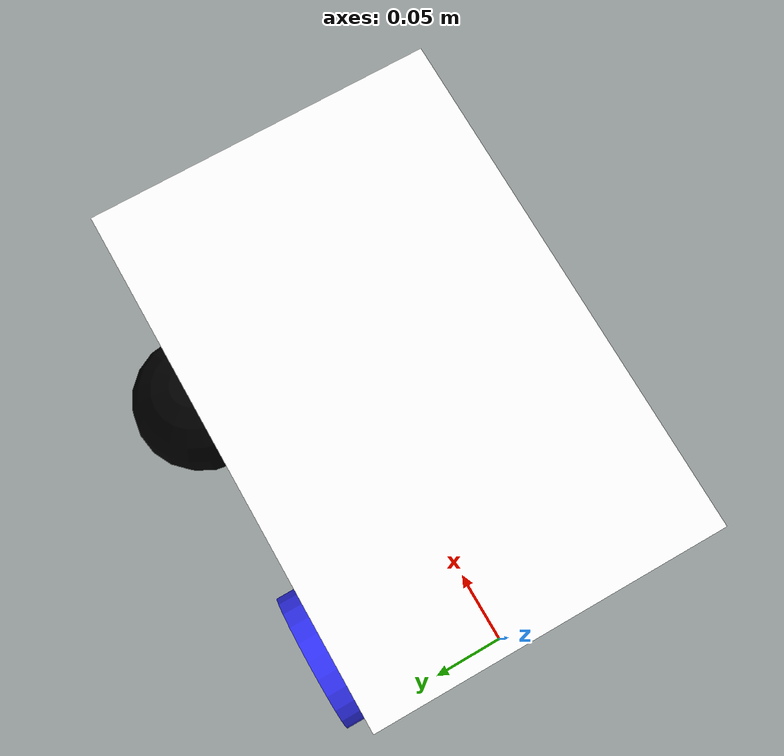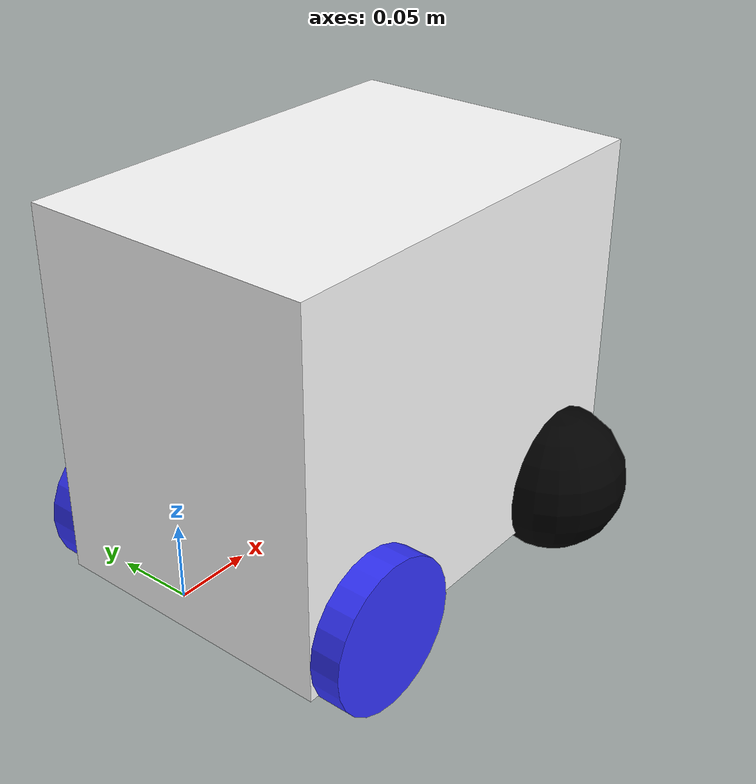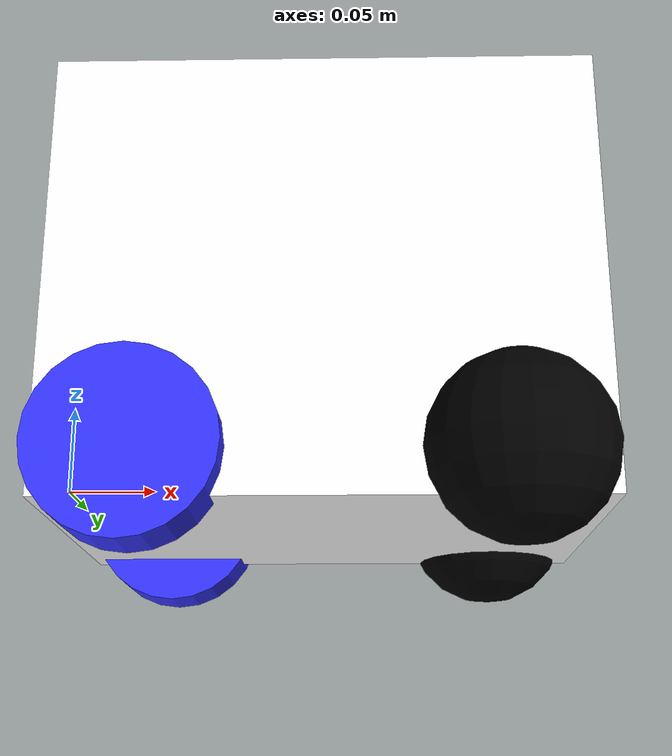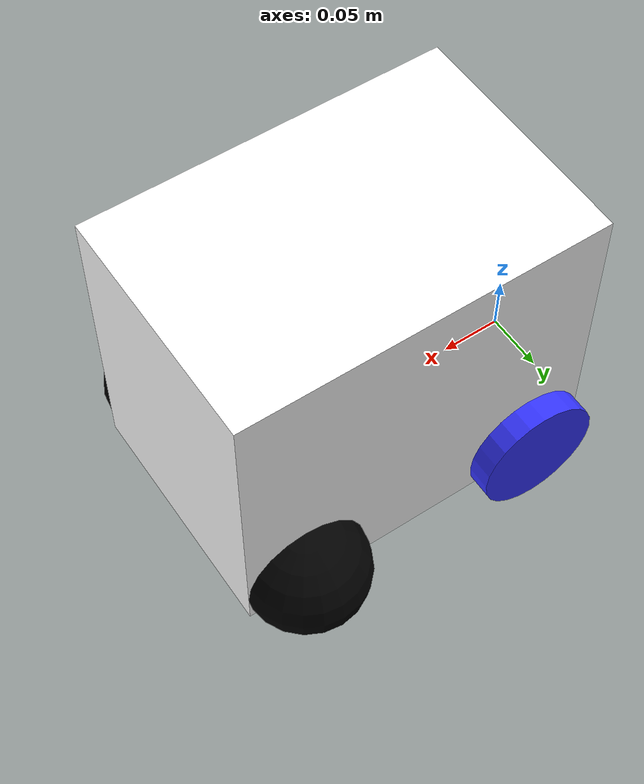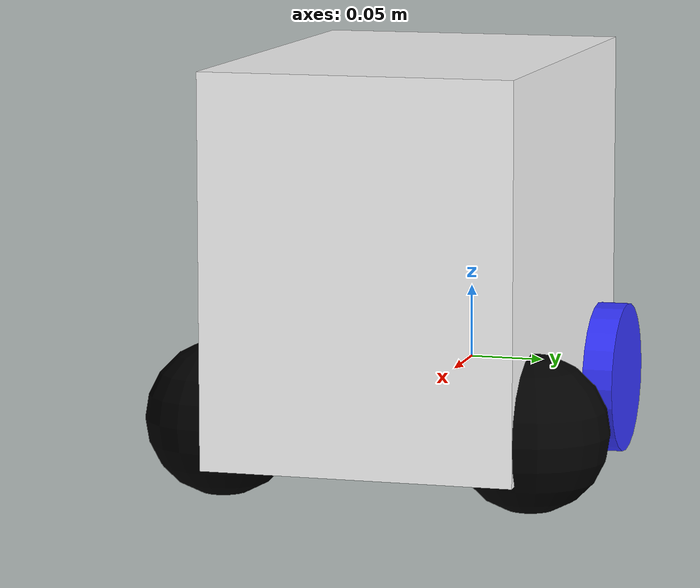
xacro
<?xml version="1.0"?>
<robot xmlns:xacro="http://www.ros.org/wiki/xacro" >

    <xacro:include filename="inertial_macros.xacro"/>

    <material name="white">
        <color rgba="1 1 1 1" />
    </material>

    <material name="orange">
        <color rgba="1 0.3 0.1 1"/>
    </material>

    <material name="blue">
        <color rgba="0.2 0.2 1 1"/>
    </material>

    <material name="black">
        <color rgba="0 0 0 1"/>
    </material>

    <material name="red">
        <color rgba="1 0 0 1"/>
    </material>

    <!-- BASE LINK -->

    <link name="base_link">

    </link>

    <!-- CHASSIS LINK -->

    <joint name="chassis_joint" type="fixed">
        <parent link="base_link"/>
        <child link="chassis"/>
        <origin xyz="-0.05 0 0"/>
    </joint>

    <link name="chassis">
        <visual>
            <origin xyz="0.2 0.0 0.1"/>
            <geometry>
                <box size="0.3 0.2 0.25"/>
            </geometry>
            <material name="white"/>
        </visual>

        <collision>
            <origin xyz="0.2 0.0 0.1"/>
            <geometry>
                <box size="0.3 0.2 0.25"/>
            </geometry>
        </collision>

        <xacro:inertial_box mass="0.5" x="0.5" y="0.25" z="0.15">
            <origin xyz="0.2 0.0 0.1" rpy="0 0 0"/>
        </xacro:inertial_box>
    </link>

    <gazebo reference="chassis">
        <material>Gazebo/White</material>
    </gazebo>

    <!-- LEFT WHEEL LINK -->

    <joint name="left_wheel_joint" type="continuous">
        <parent link="base_link"/>
        <child link="left_wheel"/>
        <origin xyz="0.05 0.1 0" rpy="-${pi/2} 0 0" />
        <axis xyz="0 0 1"/>
    </joint>

    <link name="left_wheel">
        <visual>
            <geometry>
                <cylinder radius="0.05" length="0.04"/>
            </geometry>
            <material name="blue"/>
        </visual>

        <collision>
            <geometry>
                <cylinder radius="0.05" length="0.04"/>
            </geometry>
        </collision>

        <xacro:inertial_cylinder mass="0.1" length="0.04" radius="0.05">
            <origin xyz="0 0 0" rpy="0 0 0"/>
        </xacro:inertial_cylinder>

    </link>

    <gazebo reference="left_wheel">
        <material>Gazebo/Blue</material>
    </gazebo>

    <!-- RIGHT WHEEL LINK -->

    <joint name="right_wheel_joint" type="continuous">
        <parent link="base_link"/>
        <child link="right_wheel"/>
        <origin xyz="0.05 -0.1 0" rpy="${pi/2} 0 0" />
        <axis xyz="0 0 -1"/>
    </joint>

    <link name="right_wheel">
        <visual>
            <geometry>
                <cylinder radius="0.05" length="0.04"/>
            </geometry>
            <material name="blue"/>
        </visual>

        <collision>
            <geometry>
                <cylinder radius="0.05" length="0.04"/>
            </geometry>
        </collision>

        <xacro:inertial_cylinder mass="0.1" length="0.04" radius="0.05">
            <origin xyz="0 0 0" rpy="0 0 0"/>
        </xacro:inertial_cylinder>

    </link>

    <gazebo reference="right_wheel">
        <material>Gazebo/Blue</material>
    </gazebo>

    <!-- RIGHT CASTER WHEEL LINK -->

    <joint name="right_caster_wheel_joint" type="fixed">
        <parent link="chassis"/>
        <child link="right_caster_wheel"/>
        <origin xyz="0.3 -0.1 0"/>
    </joint>

    <link name="right_caster_wheel">
        <visual>
            <geometry>
                <sphere radius="0.05"/>
            </geometry>
            <material name="black"/>
        </visual>

        <collision>
            <geometry>
                <sphere radius="0.05"/>
            </geometry>
        </collision>

        <xacro:inertial_sphere mass="0.1" radius="0.05">
            <origin xyz="0 0 0" rpy="0 0 0"/>
        </xacro:inertial_sphere>

    </link>

    <gazebo reference="right_caster_wheel">
        <material>Gazebo/Black</material>
        <mu1 value="0.001"/>
        <mu2 value="0.001"/>
    </gazebo>

    <!-- LEFT CASTER WHEEL LINK -->

    <joint name="left_caster_wheel_joint" type="fixed">
        <parent link="chassis"/>
        <child link="left_caster_wheel"/>
        <origin xyz="0.3 0.1 0"/>
    </joint>

    <link name="left_caster_wheel">
        <visual>
            <geometry>
                <sphere radius="0.05"/>
            </geometry>
            <material name="black"/>
        </visual>

        <collision>
            <geometry>
                <sphere radius="0.05"/>
            </geometry>
        </collision>

        <xacro:inertial_sphere mass="0.1" radius="0.05">
            <origin xyz="0 0 0" rpy="0 0 0"/>
        </xacro:inertial_sphere>

    </link> -->

    <gazebo reference="left_caster_wheel">
        <material>Gazebo/Black</material>
        <mu1 value="0.001"/>
        <mu2 value="0.001"/>
    </gazebo>

</robot>
